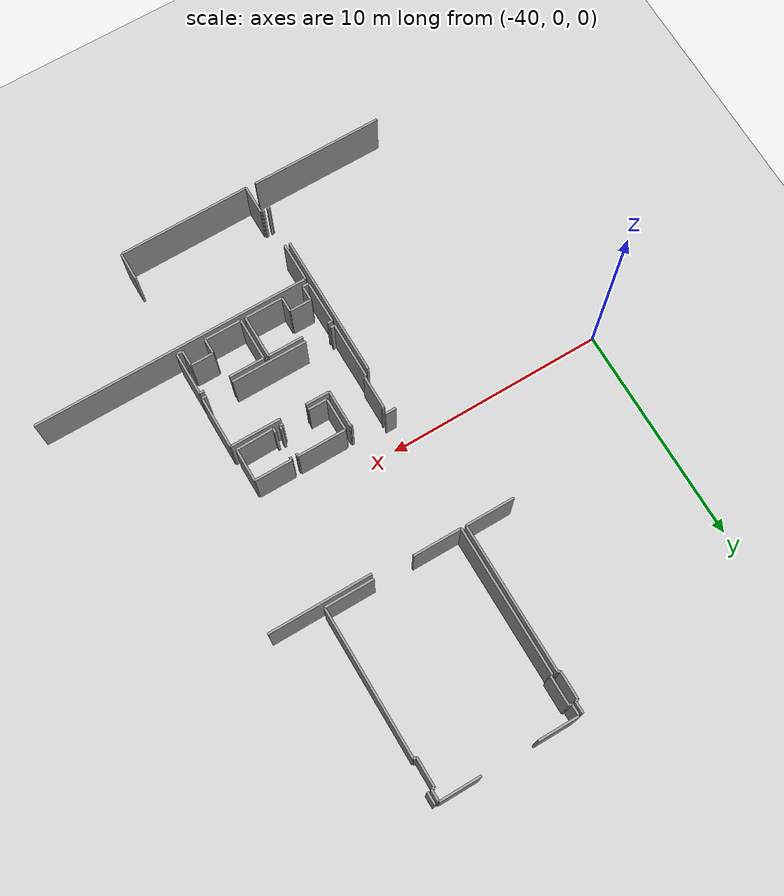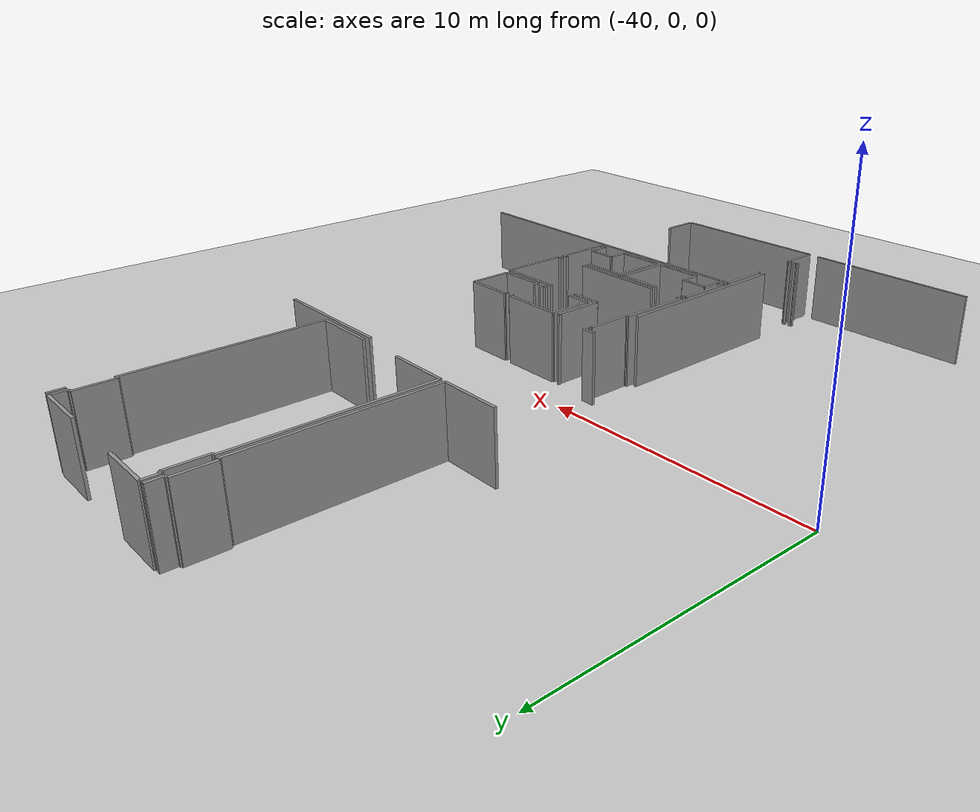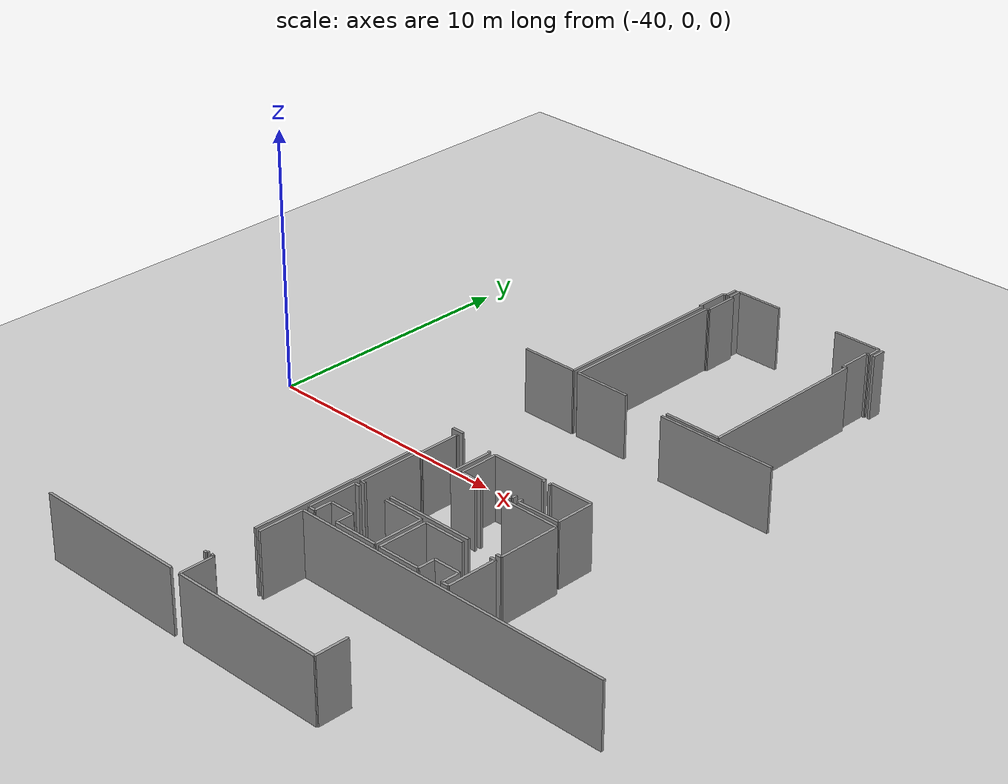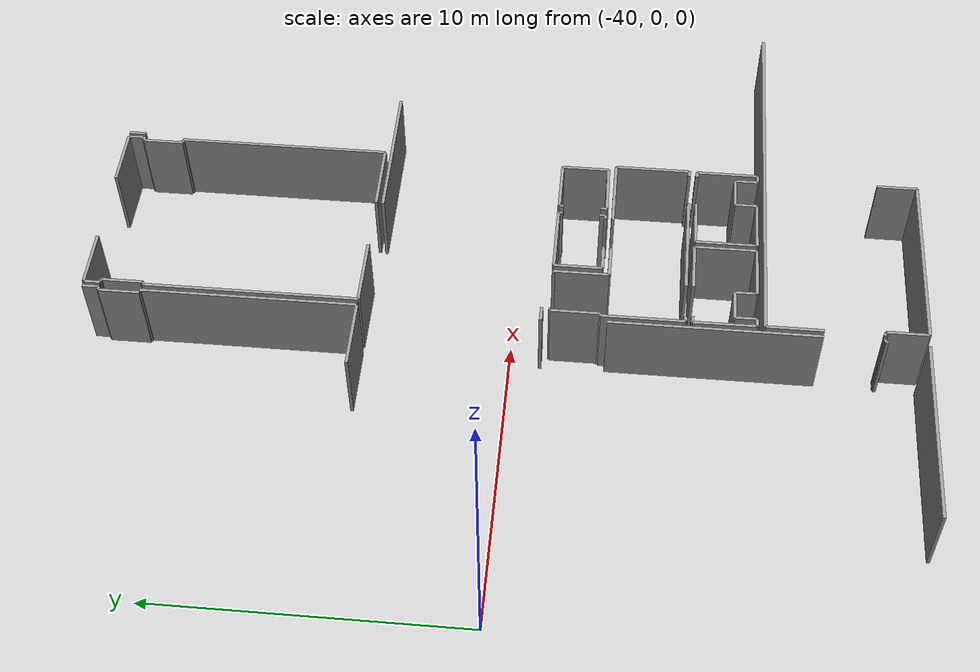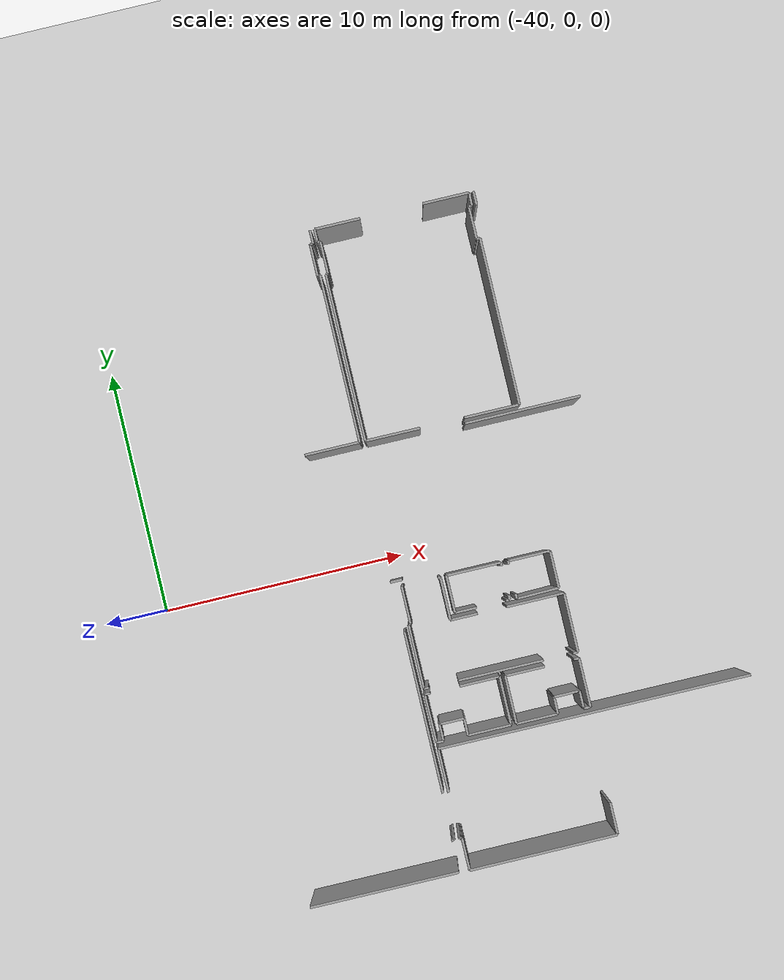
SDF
<sdf version="1.6">
 <world name="default">
  <model name="ground_plane">
   <static>1</static>
   <link name="link">
    <collision name="collision">
     <geometry><plane><normal>0 0 1</normal><size>100 100</size></plane></geometry>
     <surface><friction><ode><mu>100</mu><mu2>50</mu2></ode></friction></surface>
    </collision>
    <visual name="visual">
     <cast_shadows>0</cast_shadows>
     <geometry><plane><normal>0 0 1</normal><size>100 100</size></plane></geometry>
     <material>
      <script><uri>file://media/materials/scripts/gazebo.material</uri><name>Gazebo/Grey</name></script>
     </material>
    </visual>
   </link>
  </model>
  <model name="0510040943_A-40">
   <static>1</static>
   <link name="Wall_17">
    <collision name="Wall_17_Collision">
     <geometry><box><size>4.71456842746 0.1 2.5</size></box></geometry>
     <pose>2.35728421373 0 1.25 0 0 0</pose>
    </collision>
    <visual name="Wall_17_Visual">
     <pose>2.35728421373 0 1.25 0 0 0</pose>
     <geometry><box><size>4.71456842746 0.1 2.5</size></box></geometry>
     <material>
      <script><uri>file://media/materials/scripts/gazebo.material</uri><name>Gazebo/Grey</name></script>
      <ambient>1 1 1 1</ambient>
     </material>
    </visual>
    <pose>29.852844167 -8.89303293246 0 0 0 0.0</pose>
   </link>
   <link name="Wall_36">
    <collision name="Wall_36_Collision">
     <geometry><box><size>0.493606332775 0.1 2.5</size></box></geometry>
     <pose>0.246803166388 0 1.25 0 0 0</pose>
    </collision>
    <visual name="Wall_36_Visual">
     <pose>0.246803166388 0 1.25 0 0 0</pose>
     <geometry><box><size>0.493606332775 0.1 2.5</size></box></geometry>
     <material>
      <script><uri>file://media/materials/scripts/gazebo.material</uri><name>Gazebo/Grey</name></script>
      <ambient>1 1 1 1</ambient>
     </material>
    </visual>
    <pose>26.0096666159 -14.3398284873 0 0 0 3.14159265359</pose>
   </link>
   <link name="Wall_70">
    <collision name="Wall_70_Collision">
     <geometry><box><size>0.537499365708 0.1 2.5</size></box></geometry>
     <pose>0.268749682854 0 1.25 0 0 0</pose>
    </collision>
    <visual name="Wall_70_Visual">
     <pose>0.268749682854 0 1.25 0 0 0</pose>
     <geometry><box><size>0.537499365708 0.1 2.5</size></box></geometry>
     <material>
      <script><uri>file://media/materials/scripts/gazebo.material</uri><name>Gazebo/Grey</name></script>
      <ambient>1 1 1 1</ambient>
     </material>
    </visual>
    <pose>25.642157609 -0.0290505911605 0 0 0 -1.57079632679</pose>
   </link>
   <link name="Wall_71">
    <collision name="Wall_71_Collision">
     <geometry><box><size>0.120642411326 0.1 2.5</size></box></geometry>
     <pose>0.060321205663 0 1.25 0 0 0</pose>
    </collision>
    <visual name="Wall_71_Visual">
     <pose>0.060321205663 0 1.25 0 0 0</pose>
     <geometry><box><size>0.120642411326 0.1 2.5</size></box></geometry>
     <material>
      <script><uri>file://media/materials/scripts/gazebo.material</uri><name>Gazebo/Grey</name></script>
      <ambient>1 1 1 1</ambient>
     </material>
    </visual>
    <pose>25.642157609 -0.566549956868 0 0 0 3.14159265359</pose>
   </link>
   <link name="Wall_72">
    <collision name="Wall_72_Collision">
     <geometry><box><size>1.29306845283 0.1 2.5</size></box></geometry>
     <pose>0.646534226417 0 1.25 0 0 0</pose>
    </collision>
    <visual name="Wall_72_Visual">
     <pose>0.646534226417 0 1.25 0 0 0</pose>
     <geometry><box><size>1.29306845283 0.1 2.5</size></box></geometry>
     <material>
      <script><uri>file://media/materials/scripts/gazebo.material</uri><name>Gazebo/Grey</name></script>
      <ambient>1 1 1 1</ambient>
     </material>
    </visual>
    <pose>25.5215151976 -0.566549956868 0 0 0 -1.57079632679</pose>
   </link>
   <link name="Wall_73">
    <collision name="Wall_73_Collision">
     <geometry><box><size>0.102755366114 0.1 2.5</size></box></geometry>
     <pose>0.0513776830568 0 1.25 0 0 0</pose>
    </collision>
    <visual name="Wall_73_Visual">
     <pose>0.0513776830568 0 1.25 0 0 0</pose>
     <geometry><box><size>0.102755366114 0.1 2.5</size></box></geometry>
     <material>
      <script><uri>file://media/materials/scripts/gazebo.material</uri><name>Gazebo/Grey</name></script>
      <ambient>1 1 1 1</ambient>
     </material>
    </visual>
    <pose>25.5215151976 -1.8596184097 0 0 0 0.0</pose>
   </link>
   <link name="Wall_74">
    <collision name="Wall_74_Collision">
     <geometry><box><size>6.79403257726 0.1 2.5</size></box></geometry>
     <pose>3.39701628863 0 1.25 0 0 0</pose>
    </collision>
    <visual name="Wall_74_Visual">
     <pose>3.39701628863 0 1.25 0 0 0</pose>
     <geometry><box><size>6.79403257726 0.1 2.5</size></box></geometry>
     <material>
      <script><uri>file://media/materials/scripts/gazebo.material</uri><name>Gazebo/Grey</name></script>
      <ambient>1 1 1 1</ambient>
     </material>
    </visual>
    <pose>25.6242705638 -1.8596184097 0 0 0 -1.57079632679</pose>
   </link>
   <link name="Wall_75">
    <collision name="Wall_75_Collision">
     <geometry><box><size>2.24476074491 0.1 2.5</size></box></geometry>
     <pose>1.12238037246 0 1.25 0 0 0</pose>
    </collision>
    <visual name="Wall_75_Visual">
     <pose>1.12238037246 0 1.25 0 0 0</pose>
     <geometry><box><size>2.24476074491 0.1 2.5</size></box></geometry>
     <material>
      <script><uri>file://media/materials/scripts/gazebo.material</uri><name>Gazebo/Grey</name></script>
      <ambient>1 1 1 1</ambient>
     </material>
    </visual>
    <pose>25.6242705638 -8.65365098696 0 0 0 3.14159265359</pose>
   </link>
   <link name="Wall_78">
    <collision name="Wall_78_Collision">
     <geometry><box><size>6.77804840919 0.1 2.5</size></box></geometry>
     <pose>3.3890242046 0 1.25 0 0 0</pose>
    </collision>
    <visual name="Wall_78_Visual">
     <pose>3.3890242046 0 1.25 0 0 0</pose>
     <geometry><box><size>6.77804840919 0.1 2.5</size></box></geometry>
     <material>
      <script><uri>file://media/materials/scripts/gazebo.material</uri><name>Gazebo/Grey</name></script>
      <ambient>1 1 1 1</ambient>
     </material>
    </visual>
    <pose>25.8514740955 -8.65948647689 0 0 0 1.57079632679</pose>
   </link>
   <link name="Wall_79">
    <collision name="Wall_79_Collision">
     <geometry><box><size>0.0918455371188 0.1 2.5</size></box></geometry>
     <pose>0.0459227685594 0 1.25 0 0 0</pose>
    </collision>
    <visual name="Wall_79_Visual">
     <pose>0.0459227685594 0 1.25 0 0 0</pose>
     <geometry><box><size>0.0918455371188 0.1 2.5</size></box></geometry>
     <material>
      <script><uri>file://media/materials/scripts/gazebo.material</uri><name>Gazebo/Grey</name></script>
      <ambient>1 1 1 1</ambient>
     </material>
    </visual>
    <pose>25.8514740955 -1.88143806769 0 0 0 0.0</pose>
   </link>
   <link name="Wall_80">
    <collision name="Wall_80_Collision">
     <geometry><box><size>1.3259247983 0.1 2.5</size></box></geometry>
     <pose>0.662962399148 0 1.25 0 0 0</pose>
    </collision>
    <visual name="Wall_80_Visual">
     <pose>0.662962399148 0 1.25 0 0 0</pose>
     <geometry><box><size>1.3259247983 0.1 2.5</size></box></geometry>
     <material>
      <script><uri>file://media/materials/scripts/gazebo.material</uri><name>Gazebo/Grey</name></script>
      <ambient>1 1 1 1</ambient>
     </material>
    </visual>
    <pose>25.9433196326 -1.88143806769 0 0 0 1.57079632679</pose>
   </link>
   <link name="Wall_81">
    <collision name="Wall_81_Collision">
     <geometry><box><size>0.120134977419 0.1 2.5</size></box></geometry>
     <pose>0.0600674887096 0 1.25 0 0 0</pose>
    </collision>
    <visual name="Wall_81_Visual">
     <pose>0.0600674887096 0 1.25 0 0 0</pose>
     <geometry><box><size>0.120134977419 0.1 2.5</size></box></geometry>
     <material>
      <script><uri>file://media/materials/scripts/gazebo.material</uri><name>Gazebo/Grey</name></script>
      <ambient>1 1 1 1</ambient>
     </material>
    </visual>
    <pose>25.9433196326 -0.555513269397 0 0 0 3.14159265359</pose>
   </link>
   <link name="Wall_82">
    <collision name="Wall_82_Collision">
     <geometry><box><size>0.526462678236 0.1 2.5</size></box></geometry>
     <pose>0.263231339118 0 1.25 0 0 0</pose>
    </collision>
    <visual name="Wall_82_Visual">
     <pose>0.263231339118 0 1.25 0 0 0</pose>
     <geometry><box><size>0.526462678236 0.1 2.5</size></box></geometry>
     <material>
      <script><uri>file://media/materials/scripts/gazebo.material</uri><name>Gazebo/Grey</name></script>
      <ambient>1 1 1 1</ambient>
     </material>
    </visual>
    <pose>25.8231846552 -0.555513269397 0 0 0 1.57079632679</pose>
   </link>
   <link name="Wall_83">
    <collision name="Wall_83_Collision">
     <geometry><box><size>1.85923783427 0.1 2.5</size></box></geometry>
     <pose>0.929618917136 0 1.25 0 0 0</pose>
    </collision>
    <visual name="Wall_83_Visual">
     <pose>0.929618917136 0 1.25 0 0 0</pose>
     <geometry><box><size>1.85923783427 0.1 2.5</size></box></geometry>
     <material>
      <script><uri>file://media/materials/scripts/gazebo.material</uri><name>Gazebo/Grey</name></script>
      <ambient>1 1 1 1</ambient>
     </material>
    </visual>
    <pose>25.8231846552 -0.0290505911605 0 0 0 0.0</pose>
   </link>
   <link name="Wall_84">
    <collision name="Wall_84_Collision">
     <geometry><box><size>1.88663926524 0.1 2.5</size></box></geometry>
     <pose>0.943319632618 0 1.25 0 0 0</pose>
    </collision>
    <visual name="Wall_84_Visual">
     <pose>0.943319632618 0 1.25 0 0 0</pose>
     <geometry><box><size>1.88663926524 0.1 2.5</size></box></geometry>
     <material>
      <script><uri>file://media/materials/scripts/gazebo.material</uri><name>Gazebo/Grey</name></script>
      <ambient>1 1 1 1</ambient>
     </material>
    </visual>
    <pose>30.2381133607 -0.0290505911605 0 0 0 0.0</pose>
   </link>
   <link name="Wall_85">
    <collision name="Wall_85_Collision">
     <geometry><box><size>0.537499365708 0.1 2.5</size></box></geometry>
     <pose>0.268749682854 0 1.25 0 0 0</pose>
    </collision>
    <visual name="Wall_85_Visual">
     <pose>0.268749682854 0 1.25 0 0 0</pose>
     <geometry><box><size>0.537499365708 0.1 2.5</size></box></geometry>
     <material>
      <script><uri>file://media/materials/scripts/gazebo.material</uri><name>Gazebo/Grey</name></script>
      <ambient>1 1 1 1</ambient>
     </material>
    </visual>
    <pose>32.124752626 -0.0290505911605 0 0 0 -1.57079632679</pose>
   </link>
   <link name="Wall_86">
    <collision name="Wall_86_Collision">
     <geometry><box><size>0.131552240321 0.1 2.5</size></box></geometry>
     <pose>0.0657761201604 0 1.25 0 0 0</pose>
    </collision>
    <visual name="Wall_86_Visual">
     <pose>0.0657761201604 0 1.25 0 0 0</pose>
     <geometry><box><size>0.131552240321 0.1 2.5</size></box></geometry>
     <material>
      <script><uri>file://media/materials/scripts/gazebo.material</uri><name>Gazebo/Grey</name></script>
      <ambient>1 1 1 1</ambient>
     </material>
    </visual>
    <pose>32.124752626 -0.566549956868 0 0 0 3.14159265359</pose>
   </link>
   <link name="Wall_87">
    <collision name="Wall_87_Collision">
     <geometry><box><size>1.31298523367 0.1 2.5</size></box></geometry>
     <pose>0.656492616837 0 1.25 0 0 0</pose>
    </collision>
    <visual name="Wall_87_Visual">
     <pose>0.656492616837 0 1.25 0 0 0</pose>
     <geometry><box><size>1.31298523367 0.1 2.5</size></box></geometry>
     <material>
      <script><uri>file://media/materials/scripts/gazebo.material</uri><name>Gazebo/Grey</name></script>
      <ambient>1 1 1 1</ambient>
     </material>
    </visual>
    <pose>31.9932003856 -0.566549956868 0 0 0 -1.57079632679</pose>
   </link>
   <link name="Wall_88">
    <collision name="Wall_88_Collision">
     <geometry><box><size>0.138656315015 0.1 2.5</size></box></geometry>
     <pose>0.0693281575075 0 1.25 0 0 0</pose>
    </collision>
    <visual name="Wall_88_Visual">
     <pose>0.0693281575075 0 1.25 0 0 0</pose>
     <geometry><box><size>0.138656315015 0.1 2.5</size></box></geometry>
     <material>
      <script><uri>file://media/materials/scripts/gazebo.material</uri><name>Gazebo/Grey</name></script>
      <ambient>1 1 1 1</ambient>
     </material>
    </visual>
    <pose>31.9932003856 -1.87953519054 0 0 0 0.0</pose>
   </link>
   <link name="Wall_89">
    <collision name="Wall_89_Collision">
     <geometry><box><size>6.78743593647 0.1 2.5</size></box></geometry>
     <pose>3.39371796823 0 1.25 0 0 0</pose>
    </collision>
    <visual name="Wall_89_Visual">
     <pose>3.39371796823 0 1.25 0 0 0</pose>
     <geometry><box><size>6.78743593647 0.1 2.5</size></box></geometry>
     <material>
      <script><uri>file://media/materials/scripts/gazebo.material</uri><name>Gazebo/Grey</name></script>
      <ambient>1 1 1 1</ambient>
     </material>
    </visual>
    <pose>32.1318567007 -1.87953519054 0 0 0 -1.57079632679</pose>
   </link>
   <link name="Wall_90">
    <collision name="Wall_90_Collision">
     <geometry><box><size>2.24476074491 0.1 2.5</size></box></geometry>
     <pose>1.12238037246 0 1.25 0 0 0</pose>
    </collision>
    <visual name="Wall_90_Visual">
     <pose>1.12238037246 0 1.25 0 0 0</pose>
     <geometry><box><size>2.24476074491 0.1 2.5</size></box></geometry>
     <material>
      <script><uri>file://media/materials/scripts/gazebo.material</uri><name>Gazebo/Grey</name></script>
      <ambient>1 1 1 1</ambient>
     </material>
    </visual>
    <pose>32.1318567007 -8.66697112701 0 0 0 3.14159265359</pose>
   </link>
   <link name="Wall_91">
    <collision name="Wall_91_Collision">
     <geometry><box><size>2.23132629949 0.1 2.5</size></box></geometry>
     <pose>1.11566314974 0 1.25 0 0 0</pose>
    </collision>
    <visual name="Wall_91_Visual">
     <pose>1.11566314974 0 1.25 0 0 0</pose>
     <geometry><box><size>2.23132629949 0.1 2.5</size></box></geometry>
     <material>
      <script><uri>file://media/materials/scripts/gazebo.material</uri><name>Gazebo/Grey</name></script>
      <ambient>1 1 1 1</ambient>
     </material>
    </visual>
    <pose>28.0827878419 -8.66697112701 0 0 0 3.13823829696</pose>
   </link>
   <link name="Wall_96">
    <collision name="Wall_96_Collision">
     <geometry><box><size>0.548662911656 0.1 2.5</size></box></geometry>
     <pose>0.274331455828 0 1.25 0 0 0</pose>
    </collision>
    <visual name="Wall_96_Visual">
     <pose>0.274331455828 0 1.25 0 0 0</pose>
     <geometry><box><size>0.548662911656 0.1 2.5</size></box></geometry>
     <material>
      <script><uri>file://media/materials/scripts/gazebo.material</uri><name>Gazebo/Grey</name></script>
      <ambient>1 1 1 1</ambient>
     </material>
    </visual>
    <pose>32.3022276349 -0.567564824682 0 0 0 1.57079632679</pose>
   </link>
   <link name="Wall_164">
    <collision name="Wall_164_Collision">
     <geometry><box><size>6.59105901456 0.1 2.5</size></box></geometry>
     <pose>3.29552950728 0 1.25 0 0 0</pose>
    </collision>
    <visual name="Wall_164_Visual">
     <pose>3.29552950728 0 1.25 0 0 0</pose>
     <geometry><box><size>6.59105901456 0.1 2.5</size></box></geometry>
     <material>
      <script><uri>file://media/materials/scripts/gazebo.material</uri><name>Gazebo/Grey</name></script>
      <ambient>1 1 1 1</ambient>
     </material>
    </visual>
    <pose>25.6221139697 -16.3727355762 0 0 0 -1.57079632679</pose>
   </link>
   <link name="Wall_165">
    <collision name="Wall_165_Collision">
     <geometry><box><size>0.0822042928909 0.1 2.5</size></box></geometry>
     <pose>0.0411021464454 0 1.25 0 0 0</pose>
    </collision>
    <visual name="Wall_165_Visual">
     <pose>0.0411021464454 0 1.25 0 0 0</pose>
     <geometry><box><size>0.0822042928909 0.1 2.5</size></box></geometry>
     <material>
      <script><uri>file://media/materials/scripts/gazebo.material</uri><name>Gazebo/Grey</name></script>
      <ambient>1 1 1 1</ambient>
     </material>
    </visual>
    <pose>25.6221139697 -24.7858628914 0 0 0 -1.57079632679</pose>
   </link>
   <link name="Wall_166">
    <collision name="Wall_166_Collision">
     <geometry><box><size>0.106053686507 0.1 2.5</size></box></geometry>
     <pose>0.0530268432537 0 1.25 0 0 0</pose>
    </collision>
    <visual name="Wall_166_Visual">
     <pose>0.0530268432537 0 1.25 0 0 0</pose>
     <geometry><box><size>0.106053686507 0.1 2.5</size></box></geometry>
     <material>
      <script><uri>file://media/materials/scripts/gazebo.material</uri><name>Gazebo/Grey</name></script>
      <ambient>1 1 1 1</ambient>
     </material>
    </visual>
    <pose>25.6221139697 -24.8680671842 0 0 0 3.14159265359</pose>
   </link>
   <link name="Wall_168">
    <collision name="Wall_168_Collision">
     <geometry><box><size>6.06776779824 0.1 2.5</size></box></geometry>
     <pose>3.03388389912 0 1.25 0 0 0</pose>
    </collision>
    <visual name="Wall_168_Visual">
     <pose>3.03388389912 0 1.25 0 0 0</pose>
     <geometry><box><size>6.06776779824 0.1 2.5</size></box></geometry>
     <material>
      <script><uri>file://media/materials/scripts/gazebo.material</uri><name>Gazebo/Grey</name></script>
      <ambient>1 1 1 1</ambient>
     </material>
    </visual>
    <pose>25.5160602831 -26.1555538641 0 0 0 3.14159265359</pose>
   </link>
   <link name="Wall_173">
    <collision name="Wall_173_Collision">
     <geometry><box><size>1.3128583752 0.1 2.5</size></box></geometry>
     <pose>0.656429187598 0 1.25 0 0 0</pose>
    </collision>
    <visual name="Wall_173_Visual">
     <pose>0.656429187598 0 1.25 0 0 0</pose>
     <geometry><box><size>1.3128583752 0.1 2.5</size></box></geometry>
     <material>
      <script><uri>file://media/materials/scripts/gazebo.material</uri><name>Gazebo/Grey</name></script>
      <ambient>1 1 1 1</ambient>
     </material>
    </visual>
    <pose>25.9506774243 -26.1795301162 0 0 0 1.57079632679</pose>
   </link>
   <link name="Wall_174">
    <collision name="Wall_174_Collision">
     <geometry><box><size>0.101613639823 0.1 2.5</size></box></geometry>
     <pose>0.0508068199117 0 1.25 0 0 0</pose>
    </collision>
    <visual name="Wall_174_Visual">
     <pose>0.0508068199117 0 1.25 0 0 0</pose>
     <geometry><box><size>0.101613639823 0.1 2.5</size></box></geometry>
     <material>
      <script><uri>file://media/materials/scripts/gazebo.material</uri><name>Gazebo/Grey</name></script>
      <ambient>1 1 1 1</ambient>
     </material>
    </visual>
    <pose>25.9506774243 -24.866671741 0 0 0 3.14159265359</pose>
   </link>
   <link name="Wall_175">
    <collision name="Wall_175_Collision">
     <geometry><box><size>0.0725630486629 0.1 2.5</size></box></geometry>
     <pose>0.0362815243315 0 1.25 0 0 0</pose>
    </collision>
    <visual name="Wall_175_Visual">
     <pose>0.0362815243315 0 1.25 0 0 0</pose>
     <geometry><box><size>0.0725630486629 0.1 2.5</size></box></geometry>
     <material>
      <script><uri>file://media/materials/scripts/gazebo.material</uri><name>Gazebo/Grey</name></script>
      <ambient>1 1 1 1</ambient>
     </material>
    </visual>
    <pose>25.8490637844 -24.866671741 0 0 0 1.57079632679</pose>
   </link>
   <link name="Wall_176">
    <collision name="Wall_176_Collision">
     <geometry><box><size>1.78286903131 0.1 2.5</size></box></geometry>
     <pose>0.891434515654 0 1.25 0 0 0</pose>
    </collision>
    <visual name="Wall_176_Visual">
     <pose>0.891434515654 0 1.25 0 0 0</pose>
     <geometry><box><size>1.78286903131 0.1 2.5</size></box></geometry>
     <material>
      <script><uri>file://media/materials/scripts/gazebo.material</uri><name>Gazebo/Grey</name></script>
      <ambient>1 1 1 1</ambient>
     </material>
    </visual>
    <pose>25.8490637844 -22.9868828335 0 0 0 1.57079632679</pose>
   </link>
   <link name="Wall_177">
    <collision name="Wall_177_Collision">
     <geometry><box><size>12.7376059268 0.1 2.5</size></box></geometry>
     <pose>6.36880296341 0 1.25 0 0 0</pose>
    </collision>
    <visual name="Wall_177_Visual">
     <pose>6.36880296341 0 1.25 0 0 0</pose>
     <geometry><box><size>12.7376059268 0.1 2.5</size></box></geometry>
     <material>
      <script><uri>file://media/materials/scripts/gazebo.material</uri><name>Gazebo/Grey</name></script>
      <ambient>1 1 1 1</ambient>
     </material>
    </visual>
    <pose>25.8490637844 -21.2040138022 0 0 0 0.0</pose>
   </link>
   <link name="Wall_185">
    <collision name="Wall_185_Collision">
     <geometry><box><size>1.29382960369 0.1 2.5</size></box></geometry>
     <pose>0.646914801847 0 1.25 0 0 0</pose>
    </collision>
    <visual name="Wall_185_Visual">
     <pose>0.646914801847 0 1.25 0 0 0</pose>
     <geometry><box><size>1.29382960369 0.1 2.5</size></box></geometry>
     <material>
      <script><uri>file://media/materials/scripts/gazebo.material</uri><name>Gazebo/Grey</name></script>
      <ambient>1 1 1 1</ambient>
     </material>
    </visual>
    <pose>31.988760339 -24.8602019587 0 0 0 -1.57079632679</pose>
   </link>
   <link name="Wall_186">
    <collision name="Wall_186_Collision">
     <geometry><box><size>6.03813675409 0.1 2.5</size></box></geometry>
     <pose>3.01906837704 0 1.25 0 0 0</pose>
    </collision>
    <visual name="Wall_186_Visual">
     <pose>3.01906837704 0 1.25 0 0 0</pose>
     <geometry><box><size>6.03813675409 0.1 2.5</size></box></geometry>
     <material>
      <script><uri>file://media/materials/scripts/gazebo.material</uri><name>Gazebo/Grey</name></script>
      <ambient>1 1 1 1</ambient>
     </material>
    </visual>
    <pose>31.988760339 -26.1540315624 0 0 0 -3.13736972346</pose>
   </link>
   <link name="Wall_235">
    <collision name="Wall_235_Collision">
     <geometry><box><size>2.60097934744 0.1 2.5</size></box></geometry>
     <pose>1.30048967372 0 1.25 0 0 0</pose>
    </collision>
    <visual name="Wall_235_Visual">
     <pose>1.30048967372 0 1.25 0 0 0</pose>
     <geometry><box><size>2.60097934744 0.1 2.5</size></box></geometry>
     <material>
      <script><uri>file://media/materials/scripts/gazebo.material</uri><name>Gazebo/Grey</name></script>
      <ambient>1 1 1 1</ambient>
     </material>
    </visual>
    <pose>25.8453848886 -18.7607195413 0 0 0 1.57079632679</pose>
   </link>
   <link name="Wall_236">
    <collision name="Wall_236_Collision">
     <geometry><box><size>0.0804282742173 0.1 2.5</size></box></geometry>
     <pose>0.0402141371086 0 1.25 0 0 0</pose>
    </collision>
    <visual name="Wall_236_Visual">
     <pose>0.0402141371086 0 1.25 0 0 0</pose>
     <geometry><box><size>0.0804282742173 0.1 2.5</size></box></geometry>
     <material>
      <script><uri>file://media/materials/scripts/gazebo.material</uri><name>Gazebo/Grey</name></script>
      <ambient>1 1 1 1</ambient>
     </material>
    </visual>
    <pose>25.8453848886 -16.1597401938 0 0 0 0.0</pose>
   </link>
   <link name="Wall_237">
    <collision name="Wall_237_Collision">
     <geometry><box><size>1.5576952352 0.1 2.5</size></box></geometry>
     <pose>0.778847617598 0 1.25 0 0 0</pose>
    </collision>
    <visual name="Wall_237_Visual">
     <pose>0.778847617598 0 1.25 0 0 0</pose>
     <geometry><box><size>1.5576952352 0.1 2.5</size></box></geometry>
     <material>
      <script><uri>file://media/materials/scripts/gazebo.material</uri><name>Gazebo/Grey</name></script>
      <ambient>1 1 1 1</ambient>
     </material>
    </visual>
    <pose>25.9258131628 -16.1597401938 0 0 0 1.57079632679</pose>
   </link>
   <link name="Wall_238">
    <collision name="Wall_238_Collision">
     <geometry><box><size>0.0832191607043 0.1 2.5</size></box></geometry>
     <pose>0.0416095803522 0 1.25 0 0 0</pose>
    </collision>
    <visual name="Wall_238_Visual">
     <pose>0.0416095803522 0 1.25 0 0 0</pose>
     <geometry><box><size>0.0832191607043 0.1 2.5</size></box></geometry>
     <material>
      <script><uri>file://media/materials/scripts/gazebo.material</uri><name>Gazebo/Grey</name></script>
      <ambient>1 1 1 1</ambient>
     </material>
    </visual>
    <pose>25.9258131628 -14.6020449586 0 0 0 0.0</pose>
   </link>
   <link name="Wall_239">
    <collision name="Wall_239_Collision">
     <geometry><box><size>0.0912112447354 0.1 2.5</size></box></geometry>
     <pose>0.0456056223677 0 1.25 0 0 0</pose>
    </collision>
    <visual name="Wall_239_Visual">
     <pose>0.0456056223677 0 1.25 0 0 0</pose>
     <geometry><box><size>0.0912112447354 0.1 2.5</size></box></geometry>
     <material>
      <script><uri>file://media/materials/scripts/gazebo.material</uri><name>Gazebo/Grey</name></script>
      <ambient>1 1 1 1</ambient>
     </material>
    </visual>
    <pose>27.4062515857 -14.6020449586 0 0 0 0.0</pose>
   </link>
   <link name="Wall_240">
    <collision name="Wall_240_Collision">
     <geometry><box><size>1.74227431877 0.1 2.5</size></box></geometry>
     <pose>0.871137159385 0 1.25 0 0 0</pose>
    </collision>
    <visual name="Wall_240_Visual">
     <pose>0.871137159385 0 1.25 0 0 0</pose>
     <geometry><box><size>1.74227431877 0.1 2.5</size></box></geometry>
     <material>
      <script><uri>file://media/materials/scripts/gazebo.material</uri><name>Gazebo/Grey</name></script>
      <ambient>1 1 1 1</ambient>
     </material>
    </visual>
    <pose>27.4974628305 -14.6020449586 0 0 0 -1.57079632679</pose>
   </link>
   <link name="Wall_241">
    <collision name="Wall_241_Collision">
     <geometry><box><size>1.10747450145 0.1 2.5</size></box></geometry>
     <pose>0.553737250723 0 1.25 0 0 0</pose>
    </collision>
    <visual name="Wall_241_Visual">
     <pose>0.553737250723 0 1.25 0 0 0</pose>
     <geometry><box><size>1.10747450145 0.1 2.5</size></box></geometry>
     <material>
      <script><uri>file://media/materials/scripts/gazebo.material</uri><name>Gazebo/Grey</name></script>
      <ambient>1 1 1 1</ambient>
     </material>
    </visual>
    <pose>27.4974628305 -16.3443192774 0 0 0 0.0</pose>
   </link>
   <link name="Wall_242">
    <collision name="Wall_242_Collision">
     <geometry><box><size>2.33254681078 0.1 2.5</size></box></geometry>
     <pose>1.16627340539 0 1.25 0 0 0</pose>
    </collision>
    <visual name="Wall_242_Visual">
     <pose>1.16627340539 0 1.25 0 0 0</pose>
     <geometry><box><size>2.33254681078 0.1 2.5</size></box></geometry>
     <material>
      <script><uri>file://media/materials/scripts/gazebo.material</uri><name>Gazebo/Grey</name></script>
      <ambient>1 1 1 1</ambient>
     </material>
    </visual>
    <pose>29.7919520982 -16.3443192774 0 0 0 0.0</pose>
   </link>
   <link name="Wall_243">
    <collision name="Wall_243_Collision">
     <geometry><box><size>2.40904247222 0.1 2.5</size></box></geometry>
     <pose>1.20452123611 0 1.25 0 0 0</pose>
    </collision>
    <visual name="Wall_243_Visual">
     <pose>1.20452123611 0 1.25 0 0 0</pose>
     <geometry><box><size>2.40904247222 0.1 2.5</size></box></geometry>
     <material>
      <script><uri>file://media/materials/scripts/gazebo.material</uri><name>Gazebo/Grey</name></script>
      <ambient>1 1 1 1</ambient>
     </material>
    </visual>
    <pose>32.124498909 -16.3443192774 0 0 0 -1.57079632679</pose>
   </link>
   <link name="Wall_244">
    <collision name="Wall_244_Collision">
     <geometry><box><size>0.19853351601 0.1 2.5</size></box></geometry>
     <pose>0.0992667580048 0 1.25 0 0 0</pose>
    </collision>
    <visual name="Wall_244_Visual">
     <pose>0.0992667580048 0 1.25 0 0 0</pose>
     <geometry><box><size>0.19853351601 0.1 2.5</size></box></geometry>
     <material>
      <script><uri>file://media/materials/scripts/gazebo.material</uri><name>Gazebo/Grey</name></script>
      <ambient>1 1 1 1</ambient>
     </material>
    </visual>
    <pose>32.124498909 -18.7533617496 0 0 0 3.14159265359</pose>
   </link>
   <link name="Wall_245">
    <collision name="Wall_245_Collision">
     <geometry><box><size>3.4815040341 0.1 2.5</size></box></geometry>
     <pose>1.74075201705 0 1.25 0 0 0</pose>
    </collision>
    <visual name="Wall_245_Visual">
     <pose>1.74075201705 0 1.25 0 0 0</pose>
     <geometry><box><size>3.4815040341 0.1 2.5</size></box></geometry>
     <material>
      <script><uri>file://media/materials/scripts/gazebo.material</uri><name>Gazebo/Grey</name></script>
      <ambient>1 1 1 1</ambient>
     </material>
    </visual>
    <pose>30.7224590247 -18.7533617496 0 0 0 3.14159265359</pose>
   </link>
   <link name="Wall_246">
    <collision name="Wall_246_Collision">
     <geometry><box><size>0.203487204978 0.1 2.5</size></box></geometry>
     <pose>0.101743602489 0 1.25 0 0 0</pose>
    </collision>
    <visual name="Wall_246_Visual">
     <pose>0.101743602489 0 1.25 0 0 0</pose>
     <geometry><box><size>0.203487204978 0.1 2.5</size></box></geometry>
     <material>
      <script><uri>file://media/materials/scripts/gazebo.material</uri><name>Gazebo/Grey</name></script>
      <ambient>1 1 1 1</ambient>
     </material>
    </visual>
    <pose>26.0487390267 -18.7533617496 0 0 0 -3.10542627202</pose>
   </link>
   <link name="Wall_247">
    <collision name="Wall_247_Collision">
     <geometry><box><size>0.281372101284 0.1 2.5</size></box></geometry>
     <pose>0.140686050642 0 1.25 0 0 0</pose>
    </collision>
    <visual name="Wall_247_Visual">
     <pose>0.140686050642 0 1.25 0 0 0</pose>
     <geometry><box><size>0.281372101284 0.1 2.5</size></box></geometry>
     <material>
      <script><uri>file://media/materials/scripts/gazebo.material</uri><name>Gazebo/Grey</name></script>
      <ambient>1 1 1 1</ambient>
     </material>
    </visual>
    <pose>25.8436088699 -20.9511848582 0 0 0 0.0</pose>
   </link>
   <link name="Wall_248">
    <collision name="Wall_248_Collision">
     <geometry><box><size>0.686684934287 0.1 2.5</size></box></geometry>
     <pose>0.343342467144 0 1.25 0 0 0</pose>
    </collision>
    <visual name="Wall_248_Visual">
     <pose>0.343342467144 0 1.25 0 0 0</pose>
     <geometry><box><size>0.686684934287 0.1 2.5</size></box></geometry>
     <material>
      <script><uri>file://media/materials/scripts/gazebo.material</uri><name>Gazebo/Grey</name></script>
      <ambient>1 1 1 1</ambient>
     </material>
    </visual>
    <pose>26.1249809712 -20.9511848582 0 0 0 1.57079632679</pose>
   </link>
   <link name="Wall_249">
    <collision name="Wall_249_Collision">
     <geometry><box><size>0.996853909778 0.1 2.5</size></box></geometry>
     <pose>0.498426954889 0 1.25 0 0 0</pose>
    </collision>
    <visual name="Wall_249_Visual">
     <pose>0.498426954889 0 1.25 0 0 0</pose>
     <geometry><box><size>0.996853909778 0.1 2.5</size></box></geometry>
     <material>
      <script><uri>file://media/materials/scripts/gazebo.material</uri><name>Gazebo/Grey</name></script>
      <ambient>1 1 1 1</ambient>
     </material>
    </visual>
    <pose>26.1249809712 -20.2644999239 0 0 0 0.0</pose>
   </link>
   <link name="Wall_250">
    <collision name="Wall_250_Collision">
     <geometry><box><size>0.686684934287 0.1 2.5</size></box></geometry>
     <pose>0.343342467144 0 1.25 0 0 0</pose>
    </collision>
    <visual name="Wall_250_Visual">
     <pose>0.343342467144 0 1.25 0 0 0</pose>
     <geometry><box><size>0.686684934287 0.1 2.5</size></box></geometry>
     <material>
      <script><uri>file://media/materials/scripts/gazebo.material</uri><name>Gazebo/Grey</name></script>
      <ambient>1 1 1 1</ambient>
     </material>
    </visual>
    <pose>27.121834881 -20.2644999239 0 0 0 -1.57079632679</pose>
   </link>
   <link name="Wall_251">
    <collision name="Wall_251_Collision">
     <geometry><box><size>1.75496016644 0.1 2.5</size></box></geometry>
     <pose>0.877480083219 0 1.25 0 0 0</pose>
    </collision>
    <visual name="Wall_251_Visual">
     <pose>0.877480083219 0 1.25 0 0 0</pose>
     <geometry><box><size>1.75496016644 0.1 2.5</size></box></geometry>
     <material>
      <script><uri>file://media/materials/scripts/gazebo.material</uri><name>Gazebo/Grey</name></script>
      <ambient>1 1 1 1</ambient>
     </material>
    </visual>
    <pose>27.121834881 -20.9511848582 0 0 0 0.0</pose>
   </link>
   <link name="Wall_252">
    <collision name="Wall_252_Collision">
     <geometry><box><size>1.96960470899 0.1 2.5</size></box></geometry>
     <pose>0.984802354493 0 1.25 0 0 0</pose>
    </collision>
    <visual name="Wall_252_Visual">
     <pose>0.984802354493 0 1.25 0 0 0</pose>
     <geometry><box><size>1.96960470899 0.1 2.5</size></box></geometry>
     <material>
      <script><uri>file://media/materials/scripts/gazebo.material</uri><name>Gazebo/Grey</name></script>
      <ambient>1 1 1 1</ambient>
     </material>
    </visual>
    <pose>28.8767950474 -20.9511848582 0 0 0 1.57079632679</pose>
   </link>
   <link name="Wall_253">
    <collision name="Wall_253_Collision">
     <geometry><box><size>1.63101943472 0.1 2.5</size></box></geometry>
     <pose>0.815509717359 0 1.25 0 0 0</pose>
    </collision>
    <visual name="Wall_253_Visual">
     <pose>0.815509717359 0 1.25 0 0 0</pose>
     <geometry><box><size>1.63101943472 0.1 2.5</size></box></geometry>
     <material>
      <script><uri>file://media/materials/scripts/gazebo.material</uri><name>Gazebo/Grey</name></script>
      <ambient>1 1 1 1</ambient>
     </material>
    </visual>
    <pose>28.8767950474 -18.9815801492 0 0 0 3.14159265359</pose>
   </link>
   <link name="Wall_254">
    <collision name="Wall_254_Collision">
     <geometry><box><size>0.219338306186 0.1 2.5</size></box></geometry>
     <pose>0.109669153093 0 1.25 0 0 0</pose>
    </collision>
    <visual name="Wall_254_Visual">
     <pose>0.109669153093 0 1.25 0 0 0</pose>
     <geometry><box><size>0.219338306186 0.1 2.5</size></box></geometry>
     <material>
      <script><uri>file://media/materials/scripts/gazebo.material</uri><name>Gazebo/Grey</name></script>
      <ambient>1 1 1 1</ambient>
     </material>
    </visual>
    <pose>26.0487390267 -18.9815801492 0 0 0 3.14159265359</pose>
   </link>
   <link name="Wall_255">
    <collision name="Wall_255_Collision">
     <geometry><box><size>1.96965595503 0.1 2.5</size></box></geometry>
     <pose>0.984827977513 0 1.25 0 0 0</pose>
    </collision>
    <visual name="Wall_255_Visual">
     <pose>0.984827977513 0 1.25 0 0 0</pose>
     <geometry><box><size>1.96965595503 0.1 2.5</size></box></geometry>
     <material>
      <script><uri>file://media/materials/scripts/gazebo.material</uri><name>Gazebo/Grey</name></script>
      <ambient>1 1 1 1</ambient>
     </material>
    </visual>
    <pose>25.8294007206 -18.9815801492 0 0 0 -1.56358274588</pose>
   </link>
   <link name="Wall_256">
    <collision name="Wall_256_Collision">
     <geometry><box><size>1.9553965596 0.1 2.5</size></box></geometry>
     <pose>0.977698279799 0 1.25 0 0 0</pose>
    </collision>
    <visual name="Wall_256_Visual">
     <pose>0.977698279799 0 1.25 0 0 0</pose>
     <geometry><box><size>1.9553965596 0.1 2.5</size></box></geometry>
     <material>
      <script><uri>file://media/materials/scripts/gazebo.material</uri><name>Gazebo/Grey</name></script>
      <ambient>1 1 1 1</ambient>
     </material>
    </visual>
    <pose>29.0961333536 -20.9560054803 0 0 0 1.57079632679</pose>
   </link>
   <link name="Wall_257">
    <collision name="Wall_257_Collision">
     <geometry><box><size>1.61681128533 0.1 2.5</size></box></geometry>
     <pose>0.808405642665 0 1.25 0 0 0</pose>
    </collision>
    <visual name="Wall_257_Visual">
     <pose>0.808405642665 0 1.25 0 0 0</pose>
     <geometry><box><size>1.61681128533 0.1 2.5</size></box></geometry>
     <material>
      <script><uri>file://media/materials/scripts/gazebo.material</uri><name>Gazebo/Grey</name></script>
      <ambient>1 1 1 1</ambient>
     </material>
    </visual>
    <pose>29.0961333536 -19.0006089207 0 0 0 0.0</pose>
   </link>
   <link name="Wall_258">
    <collision name="Wall_258_Collision">
     <geometry><box><size>0.201831836403 0.1 2.5</size></box></geometry>
     <pose>0.100915918202 0 1.25 0 0 0</pose>
    </collision>
    <visual name="Wall_258_Visual">
     <pose>0.100915918202 0 1.25 0 0 0</pose>
     <geometry><box><size>0.201831836403 0.1 2.5</size></box></geometry>
     <material>
      <script><uri>file://media/materials/scripts/gazebo.material</uri><name>Gazebo/Grey</name></script>
      <ambient>1 1 1 1</ambient>
     </material>
    </visual>
    <pose>31.9049068859 -19.0006089207 0 0 0 0.0</pose>
   </link>
   <link name="Wall_259">
    <collision name="Wall_259_Collision">
     <geometry><box><size>1.97683564216 0.1 2.5</size></box></geometry>
     <pose>0.988417821079 0 1.25 0 0 0</pose>
    </collision>
    <visual name="Wall_259_Visual">
     <pose>0.988417821079 0 1.25 0 0 0</pose>
     <geometry><box><size>1.97683564216 0.1 2.5</size></box></geometry>
     <material>
      <script><uri>file://media/materials/scripts/gazebo.material</uri><name>Gazebo/Grey</name></script>
      <ambient>1 1 1 1</ambient>
     </material>
    </visual>
    <pose>32.1067387223 -19.0006089207 0 0 0 -1.57079632679</pose>
   </link>
   <link name="Wall_260">
    <collision name="Wall_260_Collision">
     <geometry><box><size>0.271223423149 0.1 2.5</size></box></geometry>
     <pose>0.135611711575 0 1.25 0 0 0</pose>
    </collision>
    <visual name="Wall_260_Visual">
     <pose>0.135611711575 0 1.25 0 0 0</pose>
     <geometry><box><size>0.271223423149 0.1 2.5</size></box></geometry>
     <material>
      <script><uri>file://media/materials/scripts/gazebo.material</uri><name>Gazebo/Grey</name></script>
      <ambient>1 1 1 1</ambient>
     </material>
    </visual>
    <pose>32.1067387223 -20.9774445628 0 0 0 3.14159265359</pose>
   </link>
   <link name="Wall_261">
    <collision name="Wall_261_Collision">
     <geometry><box><size>0.719033845842 0.1 2.5</size></box></geometry>
     <pose>0.359516922921 0 1.25 0 0 0</pose>
    </collision>
    <visual name="Wall_261_Visual">
     <pose>0.359516922921 0 1.25 0 0 0</pose>
     <geometry><box><size>0.719033845842 0.1 2.5</size></box></geometry>
     <material>
      <script><uri>file://media/materials/scripts/gazebo.material</uri><name>Gazebo/Grey</name></script>
      <ambient>1 1 1 1</ambient>
     </material>
    </visual>
    <pose>31.8355152991 -20.9774445628 0 0 0 1.57079632679</pose>
   </link>
   <link name="Wall_262">
    <collision name="Wall_262_Collision">
     <geometry><box><size>1.04696300807 0.1 2.5</size></box></geometry>
     <pose>0.523481504034 0 1.25 0 0 0</pose>
    </collision>
    <visual name="Wall_262_Visual">
     <pose>0.523481504034 0 1.25 0 0 0</pose>
     <geometry><box><size>1.04696300807 0.1 2.5</size></box></geometry>
     <material>
      <script><uri>file://media/materials/scripts/gazebo.material</uri><name>Gazebo/Grey</name></script>
      <ambient>1 1 1 1</ambient>
     </material>
    </visual>
    <pose>31.8355152991 -20.258410717 0 0 0 3.14159265359</pose>
   </link>
   <link name="Wall_263">
    <collision name="Wall_263_Collision">
     <geometry><box><size>0.693789008982 0.1 2.5</size></box></geometry>
     <pose>0.346894504491 0 1.25 0 0 0</pose>
    </collision>
    <visual name="Wall_263_Visual">
     <pose>0.346894504491 0 1.25 0 0 0</pose>
     <geometry><box><size>0.693789008982 0.1 2.5</size></box></geometry>
     <material>
      <script><uri>file://media/materials/scripts/gazebo.material</uri><name>Gazebo/Grey</name></script>
      <ambient>1 1 1 1</ambient>
     </material>
    </visual>
    <pose>30.7885522911 -20.258410717 0 0 0 -1.57079632679</pose>
   </link>
   <link name="Wall_264">
    <collision name="Wall_264_Collision">
     <geometry><box><size>1.69242321644 0.1 2.5</size></box></geometry>
     <pose>0.846211608221 0 1.25 0 0 0</pose>
    </collision>
    <visual name="Wall_264_Visual">
     <pose>0.846211608221 0 1.25 0 0 0</pose>
     <geometry><box><size>1.69242321644 0.1 2.5</size></box></geometry>
     <material>
      <script><uri>file://media/materials/scripts/gazebo.material</uri><name>Gazebo/Grey</name></script>
      <ambient>1 1 1 1</ambient>
     </material>
    </visual>
    <pose>30.7885522911 -20.952199726 0 0 0 -3.13934395039</pose>
   </link>
   <link name="Wall_265">
    <collision name="Wall_265_Collision">
     <geometry><box><size>1.52407773887 0.1 2.5</size></box></geometry>
     <pose>0.762038869437 0 1.25 0 0 0</pose>
    </collision>
    <visual name="Wall_265_Visual">
     <pose>0.762038869437 0 1.25 0 0 0</pose>
     <geometry><box><size>1.52407773887 0.1 2.5</size></box></geometry>
     <material>
      <script><uri>file://media/materials/scripts/gazebo.material</uri><name>Gazebo/Grey</name></script>
      <ambient>1 1 1 1</ambient>
     </material>
    </visual>
    <pose>27.7425534074 -16.1141980007 0 0 0 1.57079632679</pose>
   </link>
   <link name="Wall_266">
    <collision name="Wall_266_Collision">
     <geometry><box><size>2.22636626579 0.1 2.5</size></box></geometry>
     <pose>1.1131831329 0 1.25 0 0 0</pose>
    </collision>
    <visual name="Wall_266_Visual">
     <pose>1.1131831329 0 1.25 0 0 0</pose>
     <geometry><box><size>2.22636626579 0.1 2.5</size></box></geometry>
     <material>
      <script><uri>file://media/materials/scripts/gazebo.material</uri><name>Gazebo/Grey</name></script>
      <ambient>1 1 1 1</ambient>
     </material>
    </visual>
    <pose>27.7425534074 -14.5901202618 0 0 0 0.0</pose>
   </link>
   <link name="Wall_267">
    <collision name="Wall_267_Collision">
     <geometry><box><size>0.131805957274 0.1 2.5</size></box></geometry>
     <pose>0.065902978637 0 1.25 0 0 0</pose>
    </collision>
    <visual name="Wall_267_Visual">
     <pose>0.065902978637 0 1.25 0 0 0</pose>
     <geometry><box><size>0.131805957274 0.1 2.5</size></box></geometry>
     <material>
      <script><uri>file://media/materials/scripts/gazebo.material</uri><name>Gazebo/Grey</name></script>
      <ambient>1 1 1 1</ambient>
     </material>
    </visual>
    <pose>29.9689196732 -14.5901202618 0 0 0 -1.57079632679</pose>
   </link>
   <link name="Wall_268">
    <collision name="Wall_268_Collision">
     <geometry><box><size>0.194347186279 0.1 2.5</size></box></geometry>
     <pose>0.0971735931395 0 1.25 0 0 0</pose>
    </collision>
    <visual name="Wall_268_Visual">
     <pose>0.0971735931395 0 1.25 0 0 0</pose>
     <geometry><box><size>0.194347186279 0.1 2.5</size></box></geometry>
     <material>
      <script><uri>file://media/materials/scripts/gazebo.material</uri><name>Gazebo/Grey</name></script>
      <ambient>1 1 1 1</ambient>
     </material>
    </visual>
    <pose>29.9689196732 -15.9135078906 0 0 0 -1.57079632679</pose>
   </link>
   <link name="Wall_269">
    <collision name="Wall_269_Collision">
     <geometry><box><size>0.156797077181 0.1 2.5</size></box></geometry>
     <pose>0.0783985385903 0 1.25 0 0 0</pose>
    </collision>
    <visual name="Wall_269_Visual">
     <pose>0.0783985385903 0 1.25 0 0 0</pose>
     <geometry><box><size>0.156797077181 0.1 2.5</size></box></geometry>
     <material>
      <script><uri>file://media/materials/scripts/gazebo.material</uri><name>Gazebo/Grey</name></script>
      <ambient>1 1 1 1</ambient>
     </material>
    </visual>
    <pose>29.9689196732 -16.1078550769 0 0 0 3.14159265359</pose>
   </link>
   <link name="Wall_270">
    <collision name="Wall_270_Collision">
     <geometry><box><size>0.880928097781 0.1 2.5</size></box></geometry>
     <pose>0.44046404889 0 1.25 0 0 0</pose>
    </collision>
    <visual name="Wall_270_Visual">
     <pose>0.44046404889 0 1.25 0 0 0</pose>
     <geometry><box><size>0.880928097781 0.1 2.5</size></box></geometry>
     <material>
      <script><uri>file://media/materials/scripts/gazebo.material</uri><name>Gazebo/Grey</name></script>
      <ambient>1 1 1 1</ambient>
     </material>
    </visual>
    <pose>28.6234586695 -16.1078550769 0 0 0 -3.1343923172</pose>
   </link>
   <link name="Wall_271">
    <collision name="Wall_271_Collision">
     <geometry><box><size>0.205130156797 0.1 2.5</size></box></geometry>
     <pose>0.102565078399 0 1.25 0 0 0</pose>
    </collision>
    <visual name="Wall_271_Visual">
     <pose>0.102565078399 0 1.25 0 0 0</pose>
     <geometry><box><size>0.205130156797 0.1 2.5</size></box></geometry>
     <material>
      <script><uri>file://media/materials/scripts/gazebo.material</uri><name>Gazebo/Grey</name></script>
      <ambient>1 1 1 1</ambient>
     </material>
    </visual>
    <pose>30.2551123966 -16.134495357 0 0 0 1.57079632679</pose>
   </link>
   <link name="Wall_272">
    <collision name="Wall_272_Collision">
     <geometry><box><size>0.137007154818 0.1 2.5</size></box></geometry>
     <pose>0.068503577409 0 1.25 0 0 0</pose>
    </collision>
    <visual name="Wall_272_Visual">
     <pose>0.068503577409 0 1.25 0 0 0</pose>
     <geometry><box><size>0.137007154818 0.1 2.5</size></box></geometry>
     <material>
      <script><uri>file://media/materials/scripts/gazebo.material</uri><name>Gazebo/Grey</name></script>
      <ambient>1 1 1 1</ambient>
     </material>
    </visual>
    <pose>30.2551123966 -14.7282691429 0 0 0 1.57079632679</pose>
   </link>
   <link name="Wall_273">
    <collision name="Wall_273_Collision">
     <geometry><box><size>1.71842492515 0.1 2.5</size></box></geometry>
     <pose>0.859212462577 0 1.25 0 0 0</pose>
    </collision>
    <visual name="Wall_273_Visual">
     <pose>0.859212462577 0 1.25 0 0 0</pose>
     <geometry><box><size>1.71842492515 0.1 2.5</size></box></geometry>
     <material>
      <script><uri>file://media/materials/scripts/gazebo.material</uri><name>Gazebo/Grey</name></script>
      <ambient>1 1 1 1</ambient>
     </material>
    </visual>
    <pose>30.2551123966 -14.5912619881 0 0 0 0.0</pose>
   </link>
   <link name="Wall_274">
    <collision name="Wall_274_Collision">
     <geometry><box><size>1.50733241995 0.1 2.5</size></box></geometry>
     <pose>0.753666209976 0 1.25 0 0 0</pose>
    </collision>
    <visual name="Wall_274_Visual">
     <pose>0.753666209976 0 1.25 0 0 0</pose>
     <geometry><box><size>1.50733241995 0.1 2.5</size></box></geometry>
     <material>
      <script><uri>file://media/materials/scripts/gazebo.material</uri><name>Gazebo/Grey</name></script>
      <ambient>1 1 1 1</ambient>
     </material>
    </visual>
    <pose>31.9735373218 -14.5912619881 0 0 0 -1.57079632679</pose>
   </link>
   <link name="Wall_275">
    <collision name="Wall_275_Collision">
     <geometry><box><size>1.71879990154 0.1 2.5</size></box></geometry>
     <pose>0.859399950768 0 1.25 0 0 0</pose>
    </collision>
    <visual name="Wall_275_Visual">
     <pose>0.859399950768 0 1.25 0 0 0</pose>
     <geometry><box><size>1.71879990154 0.1 2.5</size></box></geometry>
     <material>
      <script><uri>file://media/materials/scripts/gazebo.material</uri><name>Gazebo/Grey</name></script>
      <ambient>1 1 1 1</ambient>
     </material>
    </visual>
    <pose>31.9735373218 -16.0985944081 0 0 0 -3.12070391614</pose>
   </link>
   <pose>-56.15 13.3913863094 0 0 0 0</pose>
  </model>
 </world>
</sdf>
